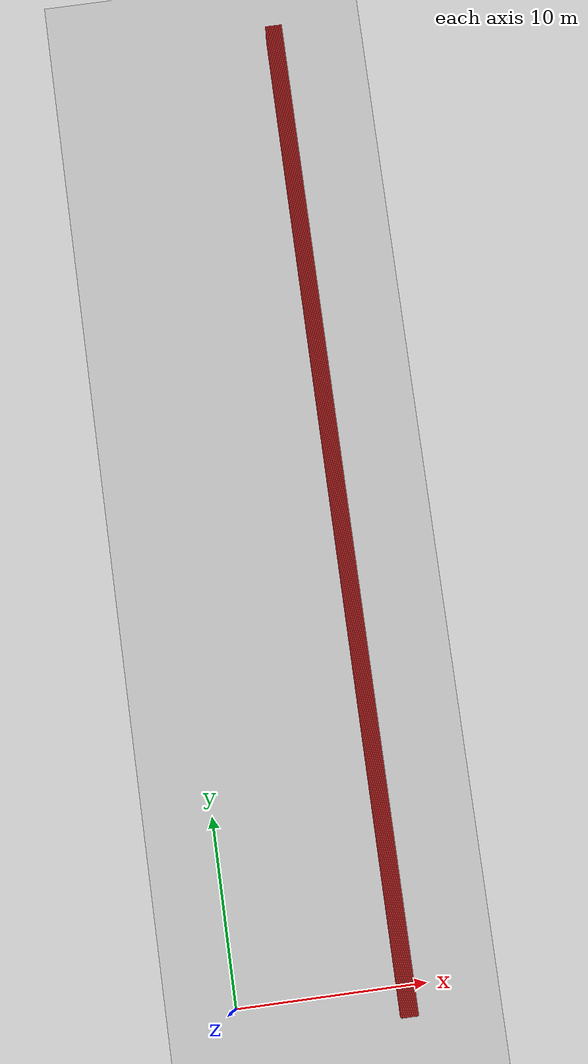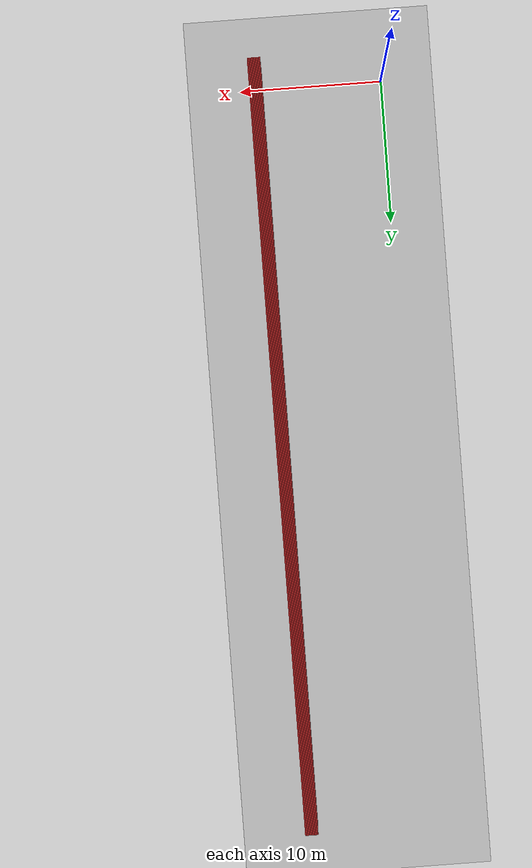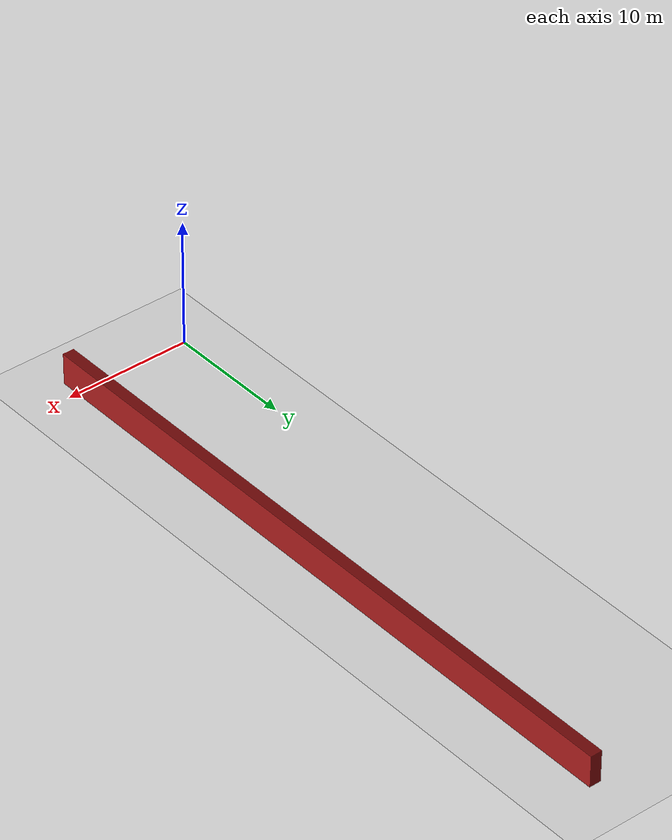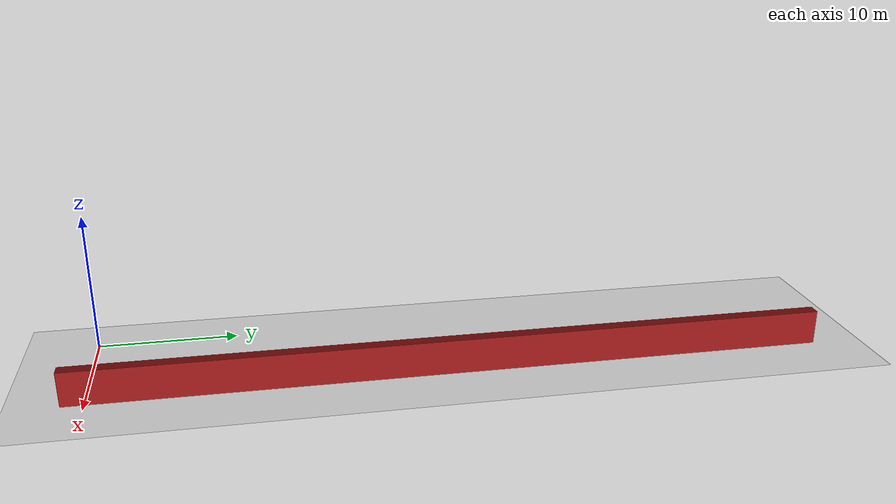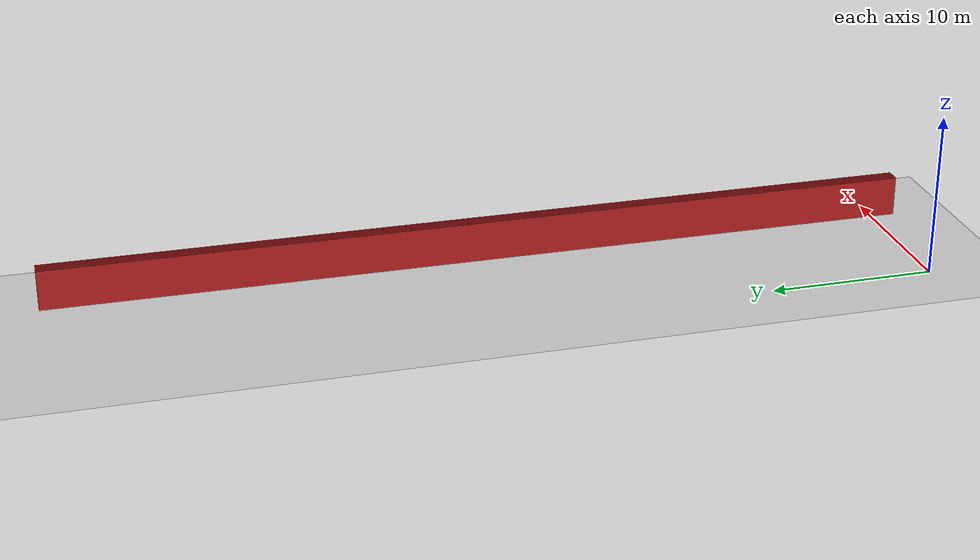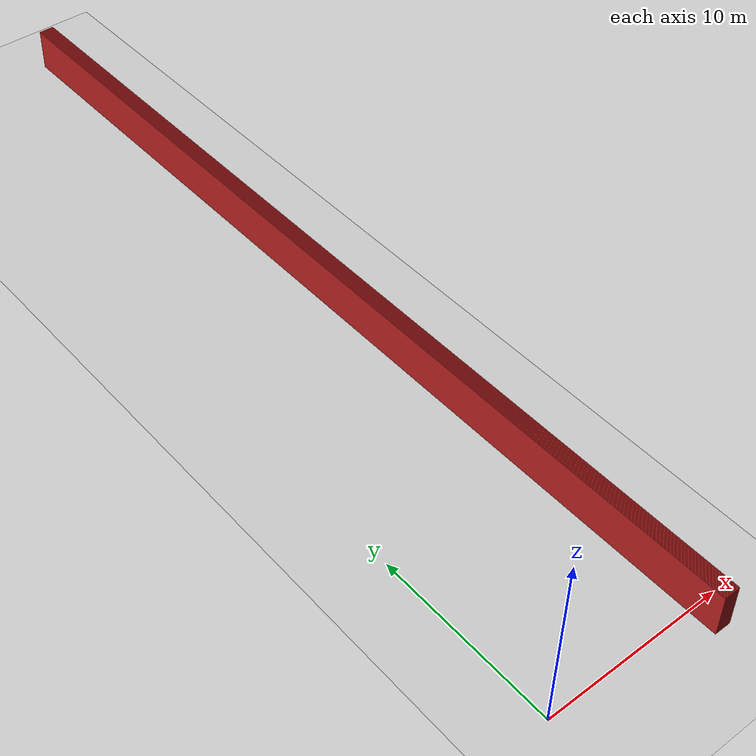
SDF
<sdf version="1.4">
 <world name="1_wall">
  <model name="ground_plane">
   <static>1</static>
   <link name="link">
    <collision name="collision">
     <geometry><plane><normal>0 0 1</normal><size>1000 1000</size></plane></geometry>
     <surface><friction><ode><mu>100</mu><mu2>50</mu2></ode></friction></surface>
    </collision>
    <visual name="visual">
     <cast_shadows>0</cast_shadows>
     <geometry><plane><normal>0 0 1</normal><size>10000 10000</size></plane></geometry>
     <material>
      <script><uri>file://media/materials/scripts/gazebo.material</uri><name>Gazebo/Grey</name></script>
     </material>
    </visual>
    <velocity_decay><linear>0</linear><angular>0</angular></velocity_decay>
   </link>
  </model>
  <model name="Wall_198">
   <static>1</static>
   <link name="Wall_198">
    <collision name="Wall_Collision_198">
     <geometry><box><size>53.65 0.05 2.5</size></box></geometry>
     <pose>0 0 1.25 0 -0 0</pose>
    </collision>
    <visual name="Wall_Visual_198">
     <pose>0 0 1.25 0 -0 0</pose>
     <geometry><box><size>53.65 0.05 2.5</size></box></geometry>
     <material>
      <script><uri>file://media/materials/scripts/gazebo.material</uri><name>Gazebo/Red</name></script>
     </material>
    </visual>
    <velocity_decay><linear>0</linear><angular>0</angular></velocity_decay>
    <pose>8.4 25.3 0 0 0 1.5707963267948966</pose>
   </link>
  </model>
  <model name="Wall_199">
   <static>1</static>
   <link name="Wall_199">
    <collision name="Wall_Collision_199">
     <geometry><box><size>53.65 0.05 2.5</size></box></geometry>
     <pose>0 0 1.25 0 -0 0</pose>
    </collision>
    <visual name="Wall_Visual_199">
     <pose>0 0 1.25 0 -0 0</pose>
     <geometry><box><size>53.65 0.05 2.5</size></box></geometry>
     <material>
      <script><uri>file://media/materials/scripts/gazebo.material</uri><name>Gazebo/Red</name></script>
     </material>
    </visual>
    <velocity_decay><linear>0</linear><angular>0</angular></velocity_decay>
    <pose>8.45 25.3 0 0 0 1.5707963267948966</pose>
   </link>
  </model>
  <model name="Wall_200">
   <static>1</static>
   <link name="Wall_200">
    <collision name="Wall_Collision_200">
     <geometry><box><size>53.65 0.05 2.5</size></box></geometry>
     <pose>0 0 1.25 0 -0 0</pose>
    </collision>
    <visual name="Wall_Visual_200">
     <pose>0 0 1.25 0 -0 0</pose>
     <geometry><box><size>53.65 0.05 2.5</size></box></geometry>
     <material>
      <script><uri>file://media/materials/scripts/gazebo.material</uri><name>Gazebo/Red</name></script>
     </material>
    </visual>
    <velocity_decay><linear>0</linear><angular>0</angular></velocity_decay>
    <pose>8.5 25.3 0 0 0 1.5707963267948966</pose>
   </link>
  </model>
  <model name="Wall_201">
   <static>1</static>
   <link name="Wall_201">
    <collision name="Wall_Collision_201">
     <geometry><box><size>53.65 0.05 2.5</size></box></geometry>
     <pose>0 0 1.25 0 -0 0</pose>
    </collision>
    <visual name="Wall_Visual_201">
     <pose>0 0 1.25 0 -0 0</pose>
     <geometry><box><size>53.65 0.05 2.5</size></box></geometry>
     <material>
      <script><uri>file://media/materials/scripts/gazebo.material</uri><name>Gazebo/Red</name></script>
     </material>
    </visual>
    <velocity_decay><linear>0</linear><angular>0</angular></velocity_decay>
    <pose>8.55 25.3 0 0 0 1.5707963267948966</pose>
   </link>
  </model>
  <model name="Wall_202">
   <static>1</static>
   <link name="Wall_202">
    <collision name="Wall_Collision_202">
     <geometry><box><size>53.65 0.05 2.5</size></box></geometry>
     <pose>0 0 1.25 0 -0 0</pose>
    </collision>
    <visual name="Wall_Visual_202">
     <pose>0 0 1.25 0 -0 0</pose>
     <geometry><box><size>53.65 0.05 2.5</size></box></geometry>
     <material>
      <script><uri>file://media/materials/scripts/gazebo.material</uri><name>Gazebo/Red</name></script>
     </material>
    </visual>
    <velocity_decay><linear>0</linear><angular>0</angular></velocity_decay>
    <pose>8.6 25.3 0 0 0 1.5707963267948966</pose>
   </link>
  </model>
  <model name="Wall_203">
   <static>1</static>
   <link name="Wall_203">
    <collision name="Wall_Collision_203">
     <geometry><box><size>53.65 0.05 2.5</size></box></geometry>
     <pose>0 0 1.25 0 -0 0</pose>
    </collision>
    <visual name="Wall_Visual_203">
     <pose>0 0 1.25 0 -0 0</pose>
     <geometry><box><size>53.65 0.05 2.5</size></box></geometry>
     <material>
      <script><uri>file://media/materials/scripts/gazebo.material</uri><name>Gazebo/Red</name></script>
     </material>
    </visual>
    <velocity_decay><linear>0</linear><angular>0</angular></velocity_decay>
    <pose>8.65 25.3 0 0 0 1.5707963267948966</pose>
   </link>
  </model>
  <model name="Wall_204">
   <static>1</static>
   <link name="Wall_204">
    <collision name="Wall_Collision_204">
     <geometry><box><size>53.65 0.05 2.5</size></box></geometry>
     <pose>0 0 1.25 0 -0 0</pose>
    </collision>
    <visual name="Wall_Visual_204">
     <pose>0 0 1.25 0 -0 0</pose>
     <geometry><box><size>53.65 0.05 2.5</size></box></geometry>
     <material>
      <script><uri>file://media/materials/scripts/gazebo.material</uri><name>Gazebo/Red</name></script>
     </material>
    </visual>
    <velocity_decay><linear>0</linear><angular>0</angular></velocity_decay>
    <pose>8.7 25.3 0 0 0 1.5707963267948966</pose>
   </link>
  </model>
  <model name="Wall_205">
   <static>1</static>
   <link name="Wall_205">
    <collision name="Wall_Collision_205">
     <geometry><box><size>53.65 0.05 2.5</size></box></geometry>
     <pose>0 0 1.25 0 -0 0</pose>
    </collision>
    <visual name="Wall_Visual_205">
     <pose>0 0 1.25 0 -0 0</pose>
     <geometry><box><size>53.65 0.05 2.5</size></box></geometry>
     <material>
      <script><uri>file://media/materials/scripts/gazebo.material</uri><name>Gazebo/Red</name></script>
     </material>
    </visual>
    <velocity_decay><linear>0</linear><angular>0</angular></velocity_decay>
    <pose>8.75 25.3 0 0 0 1.5707963267948966</pose>
   </link>
  </model>
  <model name="Wall_206">
   <static>1</static>
   <link name="Wall_206">
    <collision name="Wall_Collision_206">
     <geometry><box><size>53.65 0.05 2.5</size></box></geometry>
     <pose>0 0 1.25 0 -0 0</pose>
    </collision>
    <visual name="Wall_Visual_206">
     <pose>0 0 1.25 0 -0 0</pose>
     <geometry><box><size>53.65 0.05 2.5</size></box></geometry>
     <material>
      <script><uri>file://media/materials/scripts/gazebo.material</uri><name>Gazebo/Red</name></script>
     </material>
    </visual>
    <velocity_decay><linear>0</linear><angular>0</angular></velocity_decay>
    <pose>8.8 25.3 0 0 0 1.5707963267948966</pose>
   </link>
  </model>
  <model name="Wall_207">
   <static>1</static>
   <link name="Wall_207">
    <collision name="Wall_Collision_207">
     <geometry><box><size>53.65 0.05 2.5</size></box></geometry>
     <pose>0 0 1.25 0 -0 0</pose>
    </collision>
    <visual name="Wall_Visual_207">
     <pose>0 0 1.25 0 -0 0</pose>
     <geometry><box><size>53.65 0.05 2.5</size></box></geometry>
     <material>
      <script><uri>file://media/materials/scripts/gazebo.material</uri><name>Gazebo/Red</name></script>
     </material>
    </visual>
    <velocity_decay><linear>0</linear><angular>0</angular></velocity_decay>
    <pose>8.85 25.3 0 0 0 1.5707963267948966</pose>
   </link>
  </model>
  <model name="Wall_208">
   <static>1</static>
   <link name="Wall_208">
    <collision name="Wall_Collision_208">
     <geometry><box><size>53.65 0.05 2.5</size></box></geometry>
     <pose>0 0 1.25 0 -0 0</pose>
    </collision>
    <visual name="Wall_Visual_208">
     <pose>0 0 1.25 0 -0 0</pose>
     <geometry><box><size>53.65 0.05 2.5</size></box></geometry>
     <material>
      <script><uri>file://media/materials/scripts/gazebo.material</uri><name>Gazebo/Red</name></script>
     </material>
    </visual>
    <velocity_decay><linear>0</linear><angular>0</angular></velocity_decay>
    <pose>8.9 25.3 0 0 0 1.5707963267948966</pose>
   </link>
  </model>
  <model name="Wall_209">
   <static>1</static>
   <link name="Wall_209">
    <collision name="Wall_Collision_209">
     <geometry><box><size>53.65 0.05 2.5</size></box></geometry>
     <pose>0 0 1.25 0 -0 0</pose>
    </collision>
    <visual name="Wall_Visual_209">
     <pose>0 0 1.25 0 -0 0</pose>
     <geometry><box><size>53.65 0.05 2.5</size></box></geometry>
     <material>
      <script><uri>file://media/materials/scripts/gazebo.material</uri><name>Gazebo/Red</name></script>
     </material>
    </visual>
    <velocity_decay><linear>0</linear><angular>0</angular></velocity_decay>
    <pose>8.95 25.3 0 0 0 1.5707963267948966</pose>
   </link>
  </model>
  <model name="Wall_210">
   <static>1</static>
   <link name="Wall_210">
    <collision name="Wall_Collision_210">
     <geometry><box><size>53.65 0.05 2.5</size></box></geometry>
     <pose>0 0 1.25 0 -0 0</pose>
    </collision>
    <visual name="Wall_Visual_210">
     <pose>0 0 1.25 0 -0 0</pose>
     <geometry><box><size>53.65 0.05 2.5</size></box></geometry>
     <material>
      <script><uri>file://media/materials/scripts/gazebo.material</uri><name>Gazebo/Red</name></script>
     </material>
    </visual>
    <velocity_decay><linear>0</linear><angular>0</angular></velocity_decay>
    <pose>9.0 25.3 0 0 0 1.5707963267948966</pose>
   </link>
  </model>
  <model name="Wall_211">
   <static>1</static>
   <link name="Wall_211">
    <collision name="Wall_Collision_211">
     <geometry><box><size>53.65 0.05 2.5</size></box></geometry>
     <pose>0 0 1.25 0 -0 0</pose>
    </collision>
    <visual name="Wall_Visual_211">
     <pose>0 0 1.25 0 -0 0</pose>
     <geometry><box><size>53.65 0.05 2.5</size></box></geometry>
     <material>
      <script><uri>file://media/materials/scripts/gazebo.material</uri><name>Gazebo/Red</name></script>
     </material>
    </visual>
    <velocity_decay><linear>0</linear><angular>0</angular></velocity_decay>
    <pose>9.05 25.3 0 0 0 1.5707963267948966</pose>
   </link>
  </model>
  <model name="Wall_212">
   <static>1</static>
   <link name="Wall_212">
    <collision name="Wall_Collision_212">
     <geometry><box><size>53.65 0.05 2.5</size></box></geometry>
     <pose>0 0 1.25 0 -0 0</pose>
    </collision>
    <visual name="Wall_Visual_212">
     <pose>0 0 1.25 0 -0 0</pose>
     <geometry><box><size>53.65 0.05 2.5</size></box></geometry>
     <material>
      <script><uri>file://media/materials/scripts/gazebo.material</uri><name>Gazebo/Red</name></script>
     </material>
    </visual>
    <velocity_decay><linear>0</linear><angular>0</angular></velocity_decay>
    <pose>9.1 25.3 0 0 0 1.5707963267948966</pose>
   </link>
  </model>
  <model name="Wall_213">
   <static>1</static>
   <link name="Wall_213">
    <collision name="Wall_Collision_213">
     <geometry><box><size>53.65 0.05 2.5</size></box></geometry>
     <pose>0 0 1.25 0 -0 0</pose>
    </collision>
    <visual name="Wall_Visual_213">
     <pose>0 0 1.25 0 -0 0</pose>
     <geometry><box><size>53.65 0.05 2.5</size></box></geometry>
     <material>
      <script><uri>file://media/materials/scripts/gazebo.material</uri><name>Gazebo/Red</name></script>
     </material>
    </visual>
    <velocity_decay><linear>0</linear><angular>0</angular></velocity_decay>
    <pose>9.15 25.3 0 0 0 1.5707963267948966</pose>
   </link>
  </model>
  <model name="Wall_214">
   <static>1</static>
   <link name="Wall_214">
    <collision name="Wall_Collision_214">
     <geometry><box><size>53.65 0.05 2.5</size></box></geometry>
     <pose>0 0 1.25 0 -0 0</pose>
    </collision>
    <visual name="Wall_Visual_214">
     <pose>0 0 1.25 0 -0 0</pose>
     <geometry><box><size>53.65 0.05 2.5</size></box></geometry>
     <material>
      <script><uri>file://media/materials/scripts/gazebo.material</uri><name>Gazebo/Red</name></script>
     </material>
    </visual>
    <velocity_decay><linear>0</linear><angular>0</angular></velocity_decay>
    <pose>9.2 25.3 0 0 0 1.5707963267948966</pose>
   </link>
  </model>
  <model name="Wall_215">
   <static>1</static>
   <link name="Wall_215">
    <collision name="Wall_Collision_215">
     <geometry><box><size>53.65 0.05 2.5</size></box></geometry>
     <pose>0 0 1.25 0 -0 0</pose>
    </collision>
    <visual name="Wall_Visual_215">
     <pose>0 0 1.25 0 -0 0</pose>
     <geometry><box><size>53.65 0.05 2.5</size></box></geometry>
     <material>
      <script><uri>file://media/materials/scripts/gazebo.material</uri><name>Gazebo/Red</name></script>
     </material>
    </visual>
    <velocity_decay><linear>0</linear><angular>0</angular></velocity_decay>
    <pose>9.25 25.3 0 0 0 1.5707963267948966</pose>
   </link>
  </model>
 </world>
</sdf>
